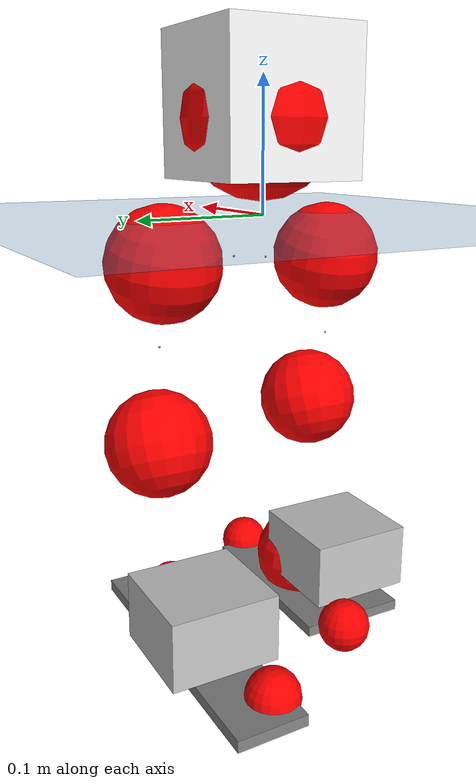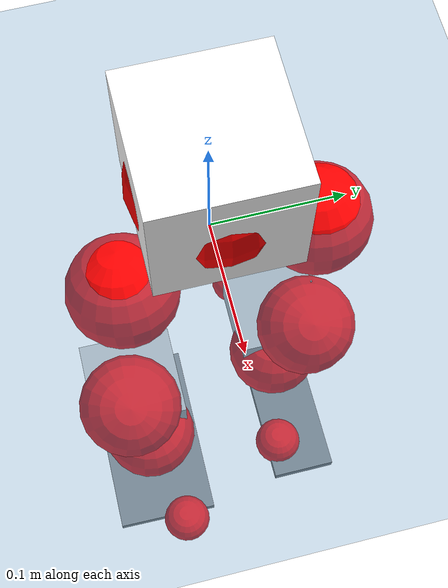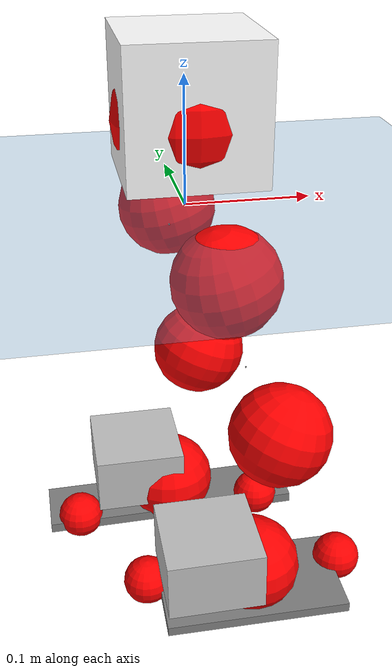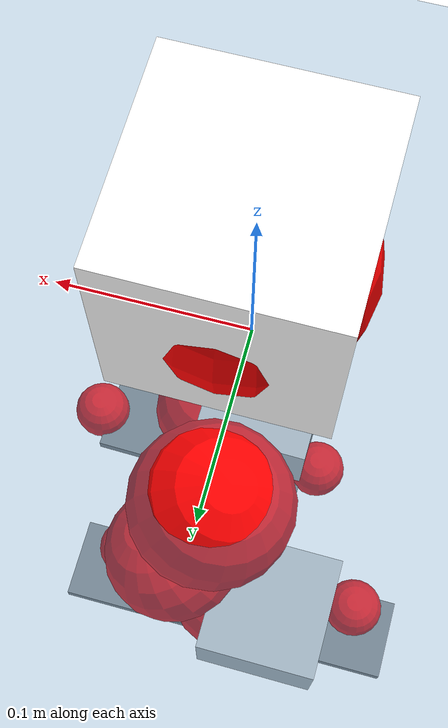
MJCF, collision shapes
<mujoco model="pi_12dof_release_v1">
  <compiler angle="radian" assetdir="assets" balanceinertia="true" inertiafromgeom="false"/>

  <option timestep="0.005" density="1.2" viscosity="2e-05"/>

  <size nkey="1"/>

  <visual>
    <quality shadowsize="8192"/>
    <map shadowclip="0.5"/>
  </visual>

  <default>
    <default class="/">
      <joint armature="0.01" damping="0.01" frictionloss="0.01"/>
      <geom contype="0" conaffinity="0" group="1" solref="-1000 -80"/>
      <site size="0.01 0.005 0.005" group="5"/>
      <general forcelimited="true" biastype="affine" gainprm="20" biasprm="0 -20 -0.5"/>
      <default class="foot">
        <geom size="0.0845 0.036 0.005" type="box" condim="6" group="4" priority="1" friction="0.9 0.2 0.2" solimp="0.015 1 0.005"/>
      </default>
      <default class="reward_collision_sphere">
        <geom group="5" rgba="1 0 0 1"/>
      </default>
    </default>
  </default>

  <asset>
    <texture type="skybox" colorspace="auto" name="//unnamed_texture_0" builtin="gradient" rgb1="0.95 0.95 0.95" rgb2="0.95 0.95 0.95" width="100" height="600"/>
    <texture type="2d" colorspace="auto" name="texplane" builtin="checker" rgb1="0.345 0.575 0.748" rgb2="0.345 0.575 0.748" markrgb="1 1 1" width="512" height="512"/>
    <material name="MatPlane" class="/" texture="texplane" texuniform="true" texrepeat="2 2" specular="0.9"/>
    <mesh name="baselink_1" class="/" file="baselink_1.STL"/>
    <mesh name="r_hip_pitch_link" class="/" file="r_hip_pitch_link.STL"/>
    <mesh name="r_hip_roll_link" class="/" file="r_hip_roll_link.STL"/>
    <mesh name="r_thigh_link" class="/" file="r_thigh_link.STL"/>
    <mesh name="r_calf_link" class="/" file="r_calf_link.STL"/>
    <mesh name="r_ankle_pitch_link" class="/" file="r_ankle_pitch_link.STL"/>
    <mesh name="r_ankle_roll_link" class="/" file="r_ankle_roll_link.STL"/>
    <mesh name="l_hip_pitch_link" class="/" file="l_hip_pitch_link.STL"/>
    <mesh name="l_hip_roll_link" class="/" file="l_hip_roll_link.STL"/>
    <mesh name="l_thigh_link" class="/" file="l_thigh_link.STL"/>
    <mesh name="l_calf_link" class="/" file="l_calf_link.STL"/>
    <mesh name="l_ankle_pitch_link" class="/" file="l_ankle_pitch_link.STL"/>
    <mesh name="l_ankle_roll_link" class="/" file="l_ankle_roll_link.STL"/>
  </asset>

  <worldbody>
    <geom name="floor" class="/" size="100 100 0.125" type="plane" group="0" material="MatPlane"/>
    <light name="toplight_shadow" class="/" pos="0 0 5" dir="0.0990148 0.0990148 -0.990148" type="directional" ambient="0.04 0.04 0.04" diffuse="0.55 0.55 0.55" specular="0.12 0.12 0.12"/>
    <light name="toplight_fill" class="/" pos="0 0 5" dir="0.0990148 0.0990148 -0.990148" type="directional" castshadow="false" ambient="0.04 0.04 0.04" diffuse="0.3 0.3 0.3" specular="0.08 0.08 0.08"/>
    <body name="trunk" pos="0.00249584 0.00107283 -0.00376748" quat="0.999997 0.000368057 -9.35302e-05 -0.00247858">
      <inertial pos="0.0167045 0.0103135 0.046428" quat="0.689225 0.00961579 0.00455781 0.724469" mass="2.19028" diaginertia="0.0369122 0.00391311 0.00477885"/>
      <joint name="//unnamed_joint_0" type="free"/>
      <geom name="//unnamed_geom_1" class="/" type="mesh" density="0" rgba="1 1 1 1" mesh="baselink_1"/>
      <geom name="//unnamed_geom_2" class="/" size="0.052961 0.052961 0.052961" pos="0 0 0.0824612" type="box" rgba="1 1 1 1"/>
      <geom name="//unnamed_geom_3" class="reward_collision_sphere" size="0.0582571" pos="0 0 0.0721535"/>
      <site name="imu" class="/" pos="-0.0580268 0.000831129 0.0577479" size="0.0105922"/>
      <camera name="track" class="/" pos="0 -1.69668 0" quat="0.707107 0.707107 0 0" mode="trackcom"/>
      <camera name="ego_camera" class="/" pos="0.0973914 0 0.185538" quat="-0.5 -0.5 0.5 0.5"/>
      <body name="r_hip_pitch_link" pos="0.00880389 -0.0101263 -0.0286392" quat="0.992241 -0.000539001 -0.124328 4.19999e-05">
        <inertial pos="0.00298683 -0.0381102 0.000119943" quat="-0.0212027 0.705548 -0.0269155 0.707833" mass="0.47682" diaginertia="0.000477033 5.63985e-05 0.000114241"/>
        <joint name="r_hip_pitch_joint" class="/" pos="0 0 0" axis="0.00729413 -0.999691 0.0237809" range="-1.73698 1.49368" armature="0.0160746" damping="0.0224566" frictionloss="0.0130774"/>
        <geom name="//unnamed_geom_4" class="/" type="mesh" density="0" rgba="0.75294 0.75294 0.75294 1" mesh="r_hip_pitch_link"/>
        <geom name="//unnamed_geom_5" class="/" size="0.00052961 0.00052961 0.00052961" type="box" rgba="0.75294 0.75294 0.75294 1"/>
        <body name="r_hip_roll_link" pos="0.0065739 -0.0605163 -0.00531932" quat="0.999985 -0.00137877 -0.00508118 -0.00165555">
          <inertial pos="-0.000629164 0.000722352 -0.0690718" quat="0.737021 -0.0701443 -0.0821849 0.667178" mass="0.506884" diaginertia="0.00122214 0.000141477 0.000143191"/>
          <joint name="r_hip_roll_joint" class="/" pos="0 0 0" axis="-0.999104 0.00662357 0.0417897" stiffness="0.00917362" range="-0.125187 0.500083" armature="0.014238" damping="0.0613417" frictionloss="0.00421806"/>
          <geom name="//unnamed_geom_6" class="/" type="mesh" density="0" rgba="0.75294 0.75294 0.75294 1" mesh="r_hip_roll_link"/>
          <geom name="//unnamed_geom_7" class="/" size="0.00052961 0.00052961 0.00052961" type="box" rgba="0.75294 0.75294 0.75294 1"/>
          <geom name="//unnamed_geom_8" class="reward_collision_sphere" size="0.0423688"/>
          <body name="r_thigh_link" pos="-0.00415907 -0.0108533 -0.0688423" quat="0.999999 0.000983593 0.000236129 0.000110558">
            <inertial pos="0.000861518 -0.000561988 -0.0436898" quat="0.740728 0.67179 0.00203518 0.00407656" mass="0.13843" diaginertia="0.000526318 4.22634e-05 6.6943e-05"/>
            <joint name="r_thigh_joint" class="/" pos="0 0 0" axis="0.00347893 -0.00499123 -0.999981" range="-0.136614 0.610101" armature="0.00374731" damping="0.019072" frictionloss="0.00758138"/>
            <geom name="//unnamed_geom_9" class="/" type="mesh" density="0" rgba="0.75294 0.75294 0.75294 1" mesh="r_thigh_link"/>
            <geom name="//unnamed_geom_10" class="/" size="0.00052961 0.00052961 0.00052961" type="box" rgba="0.75294 0.75294 0.75294 1"/>
            <body name="r_calf_link" pos="0.0118667 -0.00212635 -0.0705425" quat="0.94765 -6.67064e-07 0.31931 -5.69515e-06">
              <inertial pos="0.00681235 0.0128453 -0.0643793" quat="0.99765 -0.0231505 -0.0306019 0.0567579" mass="0.949185" diaginertia="0.0143204 0.0012999 0.000222253"/>
              <joint name="r_calf_joint" class="/" pos="0 0 0" axis="-0.0297257 -0.999217 0.0261039" range="-1.65239 0.556157" armature="0.0137671" damping="0.0185337" frictionloss="0.010783"/>
              <geom name="//unnamed_geom_11" class="/" type="mesh" density="0" rgba="0.75294 0.75294 0.75294 1" mesh="r_calf_link"/>
              <geom name="//unnamed_geom_12" class="/" size="0.00052961 0.00052961 0.00052961" type="box" rgba="0.75294 0.75294 0.75294 1"/>
              <geom name="//unnamed_geom_13" class="reward_collision_sphere" size="0.0423688"/>
              <body name="r_ankle_pitch_link" pos="-0.00606775 0.00638106 -0.13448" quat="0.97945 -0.00140405 -0.201647 -0.00366389">
                <inertial pos="-0.00564574 0.00617277 0.00641276" quat="-0.0310317 0.705677 0.00169145 0.707852" mass="0.188419" diaginertia="0.00126071 0.00011145 0.000121226"/>
                <joint name="r_ankle_pitch_joint" class="/" pos="0 0 0" axis="-0.0342557 -0.999236 0.0188192" stiffness="0.0400069" range="-1.51135 0.349319" armature="0.00705286" damping="0.0547565" frictionloss="0.0105666"/>
                <geom name="//unnamed_geom_14" class="/" type="mesh" density="0" rgba="0.75294 0.75294 0.75294 1" mesh="r_ankle_pitch_link"/>
                <geom name="//unnamed_geom_15" class="/" size="0.0413096 0.0423688 0.0264805" type="box" rgba="0.75294 0.75294 0.75294 1"/>
                <body name="r_ankle_roll_link" pos="0.104322 0.00589579 -0.00183604" quat="0.999995 0.000916485 0.00230449 -0.00207595">
                  <inertial pos="-0.0220378 0.000427579 -0.0168901" quat="0.526069 0.430874 0.411508 0.606844" mass="0.500498" diaginertia="0.00348841 0.000427013 0.00029686"/>
                  <joint name="r_ankle_roll_joint" class="/" pos="0 0 0" axis="-0.999531 -0.0303379 -0.00424338" range="-0.299941 0.186411" armature="0.00423744" damping="0.00653803" frictionloss="0.00922168"/>
                  <geom name="//unnamed_geom_16" class="/" type="mesh" density="0" rgba="0.75294 0.75294 0.75294 1" mesh="r_ankle_roll_link"/>
                  <geom name="//unnamed_geom_17" class="/" type="mesh" rgba="0.75294 0.75294 0.75294 1" mesh="r_ankle_roll_link"/>
                  <geom name="right_foot" class="foot" size="0.0795968 0.0444011 0.00430918" pos="-0.0662262 0 -0.0453536"/>
                  <geom name="//unnamed_geom_19" class="reward_collision_sphere" size="0.0423688" pos="-0.0649276 0 -0.0206153"/>
                  <geom name="//unnamed_geom_20" class="reward_collision_sphere" size="0.0211844" pos="0.0194783 0.0169668 -0.0412306"/>
                  <geom name="//unnamed_geom_21" class="reward_collision_sphere" size="0.0211844" pos="-0.155826 0.0169668 -0.0412306"/>
                  <site name="right_foot" class="foot" pos="-0.0662262 0 -0.0453536" size="0.0105922"/>
                </body>
              </body>
            </body>
          </body>
        </body>
      </body>
      <body name="l_hip_pitch_link" pos="-0.0107073 0.0278672 -0.023593" quat="0.992198 -4.17359e-05 -0.12467 -0.000304707">
        <inertial pos="-0.000589405 0.0382485 0.0120769" quat="0.00753798 0.703755 0.0229064 0.710033" mass="0.39249" diaginertia="0.000333167 4.02077e-05 0.000107223"/>
        <joint name="l_hip_pitch_joint" class="/" pos="0 0 0" axis="0.00330293 0.999994 0.0010778" stiffness="0.0373567" range="-1.26944 1.73667" armature="0.0111773" damping="0" frictionloss="0.0146496"/>
        <geom name="//unnamed_geom_22" class="/" type="mesh" density="0" rgba="0.75294 0.75294 0.75294 1" mesh="l_hip_pitch_link"/>
        <geom name="//unnamed_geom_23" class="/" size="0.00052961 0.00052961 0.00052961" type="box" rgba="0.75294 0.75294 0.75294 1"/>
        <body name="l_hip_roll_link" pos="0.00514946 0.0528382 -0.0049383" quat="0.999998 -0.000855191 0.00133969 -0.00142756">
          <inertial pos="0.0108979 -0.00335285 -0.0503873" quat="0.701991 -0.0770075 -0.0719161 0.704348" mass="0.537087" diaginertia="0.00157492 0.000120781 0.000156285"/>
          <joint name="l_hip_roll_joint" class="/" pos="0 0 0" axis="-0.999949 0.00997688 0.00171435" range="-0.575452 0.149199" armature="0.0119107" damping="0" frictionloss="0.0139982"/>
          <geom name="//unnamed_geom_24" class="/" type="mesh" density="0" rgba="0.75294 0.75294 0.75294 1" mesh="l_hip_roll_link"/>
          <geom name="//unnamed_geom_25" class="/" size="0.00052961 0.00052961 0.00052961" type="box" rgba="0.75294 0.75294 0.75294 1"/>
          <geom name="//unnamed_geom_26" class="reward_collision_sphere" size="0.0423688"/>
          <body name="l_thigh_link" pos="0.0053305 -0.00430903 -0.0679798" quat="0.999999 0.000712904 0.000582771 0.000519289">
            <inertial pos="-0.00578924 -0.0116553 -0.0456452" quat="0.66317 0.747785 0.0319655 -0.000652704" mass="0.110211" diaginertia="0.000419436 2.99933e-05 5.36207e-05"/>
            <joint name="l_thigh_joint" class="/" pos="0 0 0" axis="0.00274754 -0.000781646 -0.999996" stiffness="0.0504993" range="-0.362084 0.435796" armature="0.00886295" damping="0.00522162" frictionloss="0.0113425"/>
            <geom name="//unnamed_geom_27" class="/" type="mesh" density="0" rgba="0.75294 0.75294 0.75294 1" mesh="l_thigh_link"/>
            <geom name="//unnamed_geom_28" class="/" size="0.00052961 0.00052961 0.00052961" type="box" rgba="0.75294 0.75294 0.75294 1"/>
            <body name="l_calf_link" pos="-0.0135052 0.000253073 -0.0769535" quat="0.947752 6.40355e-05 0.319007 0.000331685">
              <inertial pos="0.00709603 -0.00291485 -0.0596809" quat="0.997725 0.0234796 0.0493003 -0.0395432" mass="0.988691" diaginertia="0.0153292 0.00182349 0.00023451"/>
              <joint name="l_calf_joint" class="/" pos="0 0 0" axis="0.0301962 0.9989 -0.0358777" range="-0.674201 1.57422" armature="0.0106743" damping="0.0469469" frictionloss="0.0084475"/>
              <geom name="//unnamed_geom_29" class="/" type="mesh" density="0" rgba="0.75294 0.75294 0.75294 1" mesh="l_calf_link"/>
              <geom name="//unnamed_geom_30" class="/" size="0.00052961 0.00052961 0.00052961" type="box" rgba="0.75294 0.75294 0.75294 1"/>
              <geom name="//unnamed_geom_31" class="reward_collision_sphere" size="0.0423688"/>
              <body name="l_ankle_pitch_link" pos="-0.012455 -0.00378268 -0.133292" quat="0.979266 0.00298784 -0.202556 0.000172135">
                <inertial pos="0.00709259 -0.00734301 -0.00224781" quat="-0.00401436 0.70513 -0.00162389 0.709065" mass="0.252663" diaginertia="0.0013744 0.000105828 0.000152859"/>
                <joint name="l_ankle_pitch_joint" class="/" pos="0 0 0" axis="0.00368972 0.999971 -0.00672499" range="-0.386085 1.45116" armature="0.0141613" damping="0" frictionloss="0.00812115"/>
                <geom name="//unnamed_geom_32" class="/" type="mesh" density="0" rgba="0.75294 0.75294 0.75294 1" mesh="l_ankle_pitch_link"/>
                <geom name="//unnamed_geom_33" class="/" size="0.0413096 0.0423688 0.0264805" type="box" rgba="0.75294 0.75294 0.75294 1"/>
                <body name="l_ankle_roll_link" pos="0.0957904 -0.00945155 0.00154605" quat="0.999983 -0.00271293 -0.00428114 0.00280312">
                  <inertial pos="-0.0406252 0.00508927 -0.0178317" quat="0.589082 0.413357 0.405402 0.563709" mass="0.588986" diaginertia="0.00439451 0.000450053 0.000356926"/>
                  <joint name="l_ankle_roll_joint" class="/" pos="0 0 0" axis="-0.999972 0.00694072 0.00280647" stiffness="0.0568353" range="-0.356481 0.309171" armature="0.00517864" damping="0" frictionloss="0.00790863"/>
                  <geom name="//unnamed_geom_34" class="/" type="mesh" density="0" rgba="0.75294 0.75294 0.75294 1" mesh="l_ankle_roll_link"/>
                  <geom name="//unnamed_geom_35" class="/" type="mesh" rgba="0.75294 0.75294 0.75294 1" mesh="l_ankle_roll_link"/>
                  <geom name="left_foot" class="foot" size="0.119214 0.0280245 0.00458932" pos="-0.0662262 0 -0.0453536"/>
                  <geom name="//unnamed_geom_37" class="reward_collision_sphere" size="0.0423688" pos="-0.0649276 0 -0.0206153"/>
                  <geom name="//unnamed_geom_38" class="reward_collision_sphere" size="0.0211844" pos="0.0194783 -0.0169668 -0.0412306"/>
                  <geom name="//unnamed_geom_39" class="reward_collision_sphere" size="0.0211844" pos="-0.155826 -0.0169668 -0.0412306"/>
                  <site name="left_foot" class="foot" pos="-0.0662262 0 -0.0453536" size="0.0105922"/>
                </body>
              </body>
            </body>
          </body>
        </body>
      </body>
    </body>
  </worldbody>

  <contact>
    <pair class="/" geom1="floor" geom2="right_foot" name="//unnamed_contact_1"/>
    <pair class="/" geom1="floor" geom2="left_foot" name="//unnamed_contact_0"/>
  </contact>

  <actuator>
    <general name="r_hip_pitch_joint" class="/" joint="r_hip_pitch_joint" forcerange="-14.421 14.421" gainprm="28.4759" biasprm="0 -28.4759 -0.579395"/>
    <general name="r_hip_roll_joint" class="/" joint="r_hip_roll_joint" forcerange="-23.1725 23.1725" gainprm="28.4759" biasprm="0 -28.4759 -0.579395"/>
    <general name="r_thigh_joint" class="/" joint="r_thigh_joint" forcerange="-22.6741 22.6741" gainprm="28.4759" biasprm="0 -28.4759 -0.579395"/>
    <general name="r_calf_joint" class="/" joint="r_calf_joint" forcerange="-12.7611 12.7611" gainprm="28.4759" biasprm="0 -28.4759 -0.579395"/>
    <general name="r_ankle_pitch_joint" class="/" joint="r_ankle_pitch_joint" forcerange="-21.1812 21.1812" gainprm="28.4759" biasprm="0 -28.4759 -0.579395"/>
    <general name="r_ankle_roll_joint" class="/" joint="r_ankle_roll_joint" forcerange="-22.3036 22.3036" gainprm="28.4759" biasprm="0 -28.4759 -0.579395"/>
    <general name="l_hip_pitch_joint" class="/" joint="l_hip_pitch_joint" forcerange="-29.8363 29.8363" gainprm="28.4759" biasprm="0 -28.4759 -0.579395"/>
    <general name="l_hip_roll_joint" class="/" joint="l_hip_roll_joint" forcerange="-32.3899 32.3899" gainprm="28.4759" biasprm="0 -28.4759 -0.579395"/>
    <general name="l_thigh_joint" class="/" joint="l_thigh_joint" forcerange="-25.2575 25.2575" gainprm="28.4759" biasprm="0 -28.4759 -0.579395"/>
    <general name="l_calf_joint" class="/" joint="l_calf_joint" forcerange="-23.3512 23.3512" gainprm="28.4759" biasprm="0 -28.4759 -0.579395"/>
    <general name="l_ankle_pitch_joint" class="/" joint="l_ankle_pitch_joint" forcerange="-15.4584 15.4584" gainprm="28.4759" biasprm="0 -28.4759 -0.579395"/>
    <general name="l_ankle_roll_joint" class="/" joint="l_ankle_roll_joint" forcerange="-23.5255 23.5255" gainprm="28.4759" biasprm="0 -28.4759 -0.579395"/>
  </actuator>

  <sensor>
    <gyro site="imu" name="imu_angular_velocity"/>
    <velocimeter site="imu" name="imu_linear_velocity"/>
    <framelinvel objtype="site" objname="left_foot" name="left_foot_global_linear_velocity"/>
    <framelinvel objtype="site" objname="right_foot" name="right_foot_global_linear_velocity"/>
  </sensor>

  <keyframe>
    <key name="home" qpos="0 0 0.291 1 0 0 0 0.4 0 0 -0.8 0.4 0 -0.4 0 0 0.8 -0.4 0"/>
  </keyframe>
</mujoco>
